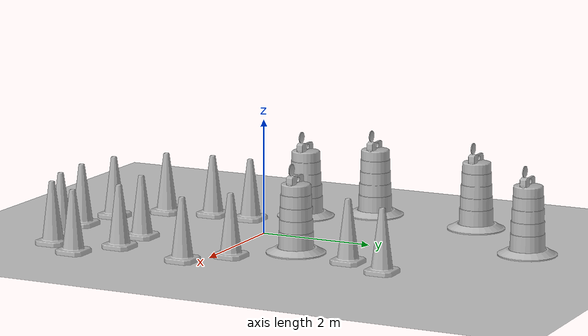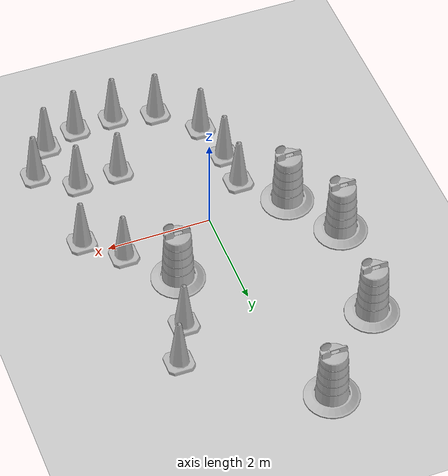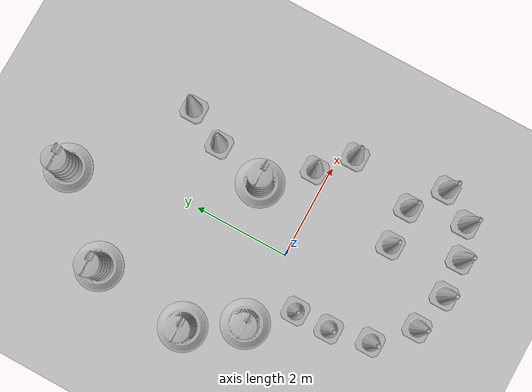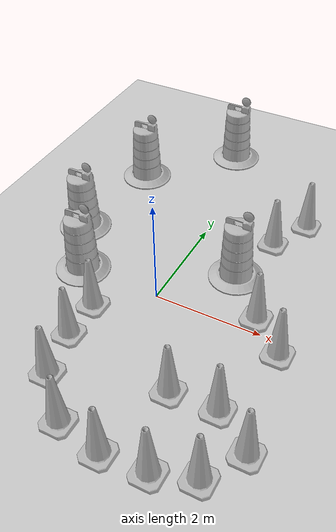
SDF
<sdf version="1.7">
 <world name="default">
  <light name="sun" type="directional">
   <pose>0 0 10 0 -0 0</pose>
   <diffuse>0.8 0.8 0.8 1</diffuse>
   <specular>0.2 0.2 0.2 1</specular>
   <attenuation>
    <range>1000</range>
    <constant>0.9</constant>
    <linear>0.01</linear>
    <quadratic>0.001</quadratic>
   </attenuation>
   <direction>-0.5 0.1 -0.9</direction>
   <spot><inner_angle>0</inner_angle><outer_angle>0</outer_angle><falloff>0</falloff></spot>
  </light>
  <model name="ground_plane">
   <static>1</static>
   <link name="link">
    <collision name="collision">
     <geometry><plane><normal>0 0 1</normal><size>100 100</size></plane></geometry>
     <surface>
      <contact><collide_bitmask>65535</collide_bitmask></contact>
      <friction><ode><mu>100</mu><mu2>50</mu2></ode></friction>
     </surface>
    </collision>
    <visual name="visual">
     <cast_shadows>0</cast_shadows>
     <geometry><plane><normal>0 0 1</normal><size>100 100</size></plane></geometry>
     <material>
      <script><uri>file://media/materials/scripts/gazebo.material</uri><name>Gazebo/Grey</name></script>
     </material>
    </visual>
   </link>
  </model>
  <gravity>0 0 -9.8</gravity>
  <magnetic_field>6e-06 2.3e-05 -4.2e-05</magnetic_field>
  <atmosphere type="adiabatic"/>
  <physics type="ode">
   <max_step_size>0.001</max_step_size>
   <real_time_factor>1</real_time_factor>
   <real_time_update_rate>1000</real_time_update_rate>
  </physics>
  <scene><ambient>0.4 0.4 0.4 1</ambient><background>0.7 0.7 0.7 1</background><shadows>1</shadows></scene>
  <audio><device>default</device></audio>
  <spherical_coordinates>
   <surface_model>EARTH_WGS84</surface_model>
   <latitude_deg>0</latitude_deg>
   <longitude_deg>0</longitude_deg>
   <elevation>0</elevation>
   <heading_deg>0</heading_deg>
  </spherical_coordinates>
  <model name="Construction Barrel">
   <link name="link">
    <inertial>
     <pose>0 0 0.4 0 -0 0</pose>
     <mass>500</mass>
     <inertia><ixx>51.2096</ixx><iyy>51.2096</iyy><izz>25</izz><ixy>0</ixy><ixz>0</ixz><iyz>0</iyz></inertia>
    </inertial>
    <collision name="collision">
     <geometry><mesh><uri>model://construction_barrel/meshes/construction_barrel.dae</uri></mesh></geometry>
    </collision>
    <visual name="visual">
     <geometry><mesh><uri>model://construction_barrel/meshes/construction_barrel.dae</uri></mesh></geometry>
    </visual>
   </link>
   <pose>1.03653 1.13203 0 1e-06 1e-06 -3e-05</pose>
  </model>
  <model name="Construction Cone">
   <link name="link">
    <collision name="collision">
     <geometry>
      <mesh><scale>10 10 10</scale><uri>model://construction_cone/meshes/construction_cone.dae</uri></mesh>
     </geometry>
    </collision>
    <visual name="visual">
     <geometry>
      <mesh><scale>10 10 10</scale><uri>model://construction_cone/meshes/construction_cone.dae</uri></mesh>
     </geometry>
    </visual>
    <inertial>
     <inertia><ixx>1</ixx><ixy>0</ixy><ixz>0</ixz><iyy>1</iyy><iyz>0</iyz><izz>1</izz></inertia>
     <mass>1</mass>
    </inertial>
   </link>
   <pose>-0.862921 -0.71213 -0 0 -1e-06 0</pose>
  </model>
  <model name="Construction Barrel_0">
   <link name="link">
    <inertial>
     <pose>0 0 0.4 0 -0 0</pose>
     <mass>500</mass>
     <inertia><ixx>51.2096</ixx><iyy>51.2096</iyy><izz>25</izz><ixy>0</ixy><ixz>0</ixz><iyz>0</iyz></inertia>
    </inertial>
    <collision name="collision">
     <geometry><mesh><uri>model://construction_barrel/meshes/construction_barrel.dae</uri></mesh></geometry>
    </collision>
    <visual name="visual">
     <geometry><mesh><uri>model://construction_barrel/meshes/construction_barrel.dae</uri></mesh></geometry>
    </visual>
   </link>
   <pose>-1.9745 3.13892 0 1e-06 1e-06 -2.7e-05</pose>
  </model>
  <model name="Construction Cone_0">
   <link name="link">
    <collision name="collision">
     <geometry>
      <mesh><scale>10 10 10</scale><uri>model://construction_cone/meshes/construction_cone.dae</uri></mesh>
     </geometry>
    </collision>
    <visual name="visual">
     <geometry>
      <mesh><scale>10 10 10</scale><uri>model://construction_cone/meshes/construction_cone.dae</uri></mesh>
     </geometry>
    </visual>
    <inertial>
     <inertia><ixx>1</ixx><ixy>0</ixy><ixz>0</ixz><iyy>1</iyy><iyz>0</iyz><izz>1</izz></inertia>
     <mass>1</mass>
    </inertial>
   </link>
   <pose>1.70792 3.02598 -6e-06 -4e-06 0 0</pose>
  </model>
  <model name="Construction Barrel_1">
   <link name="link">
    <inertial>
     <pose>0 0 0.4 0 -0 0</pose>
     <mass>500</mass>
     <inertia><ixx>51.2096</ixx><iyy>51.2096</iyy><izz>25</izz><ixy>0</ixy><ixz>0</ixz><iyz>0</iyz></inertia>
    </inertial>
    <collision name="collision">
     <geometry><mesh><uri>model://construction_barrel/meshes/construction_barrel.dae</uri></mesh></geometry>
    </collision>
    <visual name="visual">
     <geometry><mesh><uri>model://construction_barrel/meshes/construction_barrel.dae</uri></mesh></geometry>
    </visual>
   </link>
   <pose>-0.551889 4.6671 0 1e-06 1e-06 -2.5e-05</pose>
  </model>
  <model name="Construction Cone_1">
   <link name="link">
    <collision name="collision">
     <geometry>
      <mesh><scale>10 10 10</scale><uri>model://construction_cone/meshes/construction_cone.dae</uri></mesh>
     </geometry>
    </collision>
    <visual name="visual">
     <geometry>
      <mesh><scale>10 10 10</scale><uri>model://construction_cone/meshes/construction_cone.dae</uri></mesh>
     </geometry>
    </visual>
    <inertial>
     <inertia><ixx>1</ixx><ixy>0</ixy><ixz>0</ixz><iyy>1</iyy><iyz>0</iyz><izz>1</izz></inertia>
     <mass>1</mass>
    </inertial>
   </link>
   <pose>2.41947 -0.286577 -0 0 -1e-06 0</pose>
  </model>
  <model name="Construction Barrel_2">
   <link name="link">
    <inertial>
     <pose>0 0 0.4 0 -0 0</pose>
     <mass>500</mass>
     <inertia><ixx>51.2096</ixx><iyy>51.2096</iyy><izz>25</izz><ixy>0</ixy><ixz>0</ixz><iyz>0</iyz></inertia>
    </inertial>
    <collision name="collision">
     <geometry><mesh><uri>model://construction_barrel/meshes/construction_barrel.dae</uri></mesh></geometry>
    </collision>
    <visual name="visual">
     <geometry><mesh><uri>model://construction_barrel/meshes/construction_barrel.dae</uri></mesh></geometry>
    </visual>
   </link>
   <pose>-2.21547 1.091 0 1e-06 1e-06 -2.2e-05</pose>
  </model>
  <model name="Construction Cone_2">
   <link name="link">
    <collision name="collision">
     <geometry>
      <mesh><scale>10 10 10</scale><uri>model://construction_cone/meshes/construction_cone.dae</uri></mesh>
     </geometry>
    </collision>
    <visual name="visual">
     <geometry>
      <mesh><scale>10 10 10</scale><uri>model://construction_cone/meshes/construction_cone.dae</uri></mesh>
     </geometry>
    </visual>
    <inertial>
     <inertia><ixx>1</ixx><ixy>0</ixy><ixz>0</ixz><iyy>1</iyy><iyz>0</iyz><izz>1</izz></inertia>
     <mass>1</mass>
    </inertial>
   </link>
   <pose>1.19547 -1.74748 -0 0 -1e-06 0</pose>
  </model>
  <model name="Construction Cone_3">
   <link name="link">
    <collision name="collision">
     <geometry>
      <mesh><scale>10 10 10</scale><uri>model://construction_cone/meshes/construction_cone.dae</uri></mesh>
     </geometry>
    </collision>
    <visual name="visual">
     <geometry>
      <mesh><scale>10 10 10</scale><uri>model://construction_cone/meshes/construction_cone.dae</uri></mesh>
     </geometry>
    </visual>
    <inertial>
     <inertia><ixx>1</ixx><ixy>0</ixy><ixz>0</ixz><iyy>1</iyy><iyz>0</iyz><izz>1</izz></inertia>
     <mass>1</mass>
    </inertial>
   </link>
   <pose>1.79541 0.293853 -0 0 -0 0</pose>
  </model>
  <model name="Construction Cone_4">
   <link name="link">
    <collision name="collision">
     <geometry>
      <mesh><scale>10 10 10</scale><uri>model://construction_cone/meshes/construction_cone.dae</uri></mesh>
     </geometry>
    </collision>
    <visual name="visual">
     <geometry>
      <mesh><scale>10 10 10</scale><uri>model://construction_cone/meshes/construction_cone.dae</uri></mesh>
     </geometry>
    </visual>
    <inertial>
     <inertia><ixx>1</ixx><ixy>0</ixy><ixz>0</ixz><iyy>1</iyy><iyz>0</iyz><izz>1</izz></inertia>
     <mass>1</mass>
    </inertial>
   </link>
   <pose>1.32306 2.23114 -0 0 -0 0</pose>
  </model>
  <model name="Construction Cone_5">
   <link name="link">
    <collision name="collision">
     <geometry>
      <mesh><scale>10 10 10</scale><uri>model://construction_cone/meshes/construction_cone.dae</uri></mesh>
     </geometry>
    </collision>
    <visual name="visual">
     <geometry>
      <mesh><scale>10 10 10</scale><uri>model://construction_cone/meshes/construction_cone.dae</uri></mesh>
     </geometry>
    </visual>
    <inertial>
     <inertia><ixx>1</ixx><ixy>0</ixy><ixz>0</ixz><iyy>1</iyy><iyz>0</iyz><izz>1</izz></inertia>
     <mass>1</mass>
    </inertial>
   </link>
   <pose>-0.855891 -1.45799 -0 0 -1e-06 0</pose>
  </model>
  <model name="Construction Barrel_3">
   <link name="link">
    <inertial>
     <pose>0 0 0.4 0 -0 0</pose>
     <mass>500</mass>
     <inertia><ixx>51.2096</ixx><iyy>51.2096</iyy><izz>25</izz><ixy>0</ixy><ixz>0</ixz><iyz>0</iyz></inertia>
    </inertial>
    <collision name="collision">
     <geometry><mesh><uri>model://construction_barrel/meshes/construction_barrel.dae</uri></mesh></geometry>
    </collision>
    <visual name="visual">
     <geometry><mesh><uri>model://construction_barrel/meshes/construction_barrel.dae</uri></mesh></geometry>
    </visual>
   </link>
   <pose>-1.56432 0.035053 -2e-06 4e-06 7e-06 -1.5e-05</pose>
  </model>
  <model name="Construction Cone_6">
   <link name="link">
    <collision name="collision">
     <geometry>
      <mesh><scale>10 10 10</scale><uri>model://construction_cone/meshes/construction_cone.dae</uri></mesh>
     </geometry>
    </collision>
    <visual name="visual">
     <geometry>
      <mesh><scale>10 10 10</scale><uri>model://construction_cone/meshes/construction_cone.dae</uri></mesh>
     </geometry>
    </visual>
    <inertial>
     <inertia><ixx>1</ixx><ixy>0</ixy><ixz>0</ixz><iyy>1</iyy><iyz>0</iyz><izz>1</izz></inertia>
     <mass>1</mass>
    </inertial>
   </link>
   <pose>-0.687066 -2.30027 -2e-06 4e-06 -1e-06 0</pose>
  </model>
  <model name="Construction Cone_7">
   <link name="link">
    <collision name="collision">
     <geometry>
      <mesh><scale>10 10 10</scale><uri>model://construction_cone/meshes/construction_cone.dae</uri></mesh>
     </geometry>
    </collision>
    <visual name="visual">
     <geometry>
      <mesh><scale>10 10 10</scale><uri>model://construction_cone/meshes/construction_cone.dae</uri></mesh>
     </geometry>
    </visual>
    <inertial>
     <inertia><ixx>1</ixx><ixy>0</ixy><ixz>0</ixz><iyy>1</iyy><iyz>0</iyz><izz>1</izz></inertia>
     <mass>1</mass>
    </inertial>
   </link>
   <pose>0.002582 -2.97776 -0 0 -1e-06 0</pose>
  </model>
  <model name="Construction Cone_8">
   <link name="link">
    <collision name="collision">
     <geometry>
      <mesh><scale>10 10 10</scale><uri>model://construction_cone/meshes/construction_cone.dae</uri></mesh>
     </geometry>
    </collision>
    <visual name="visual">
     <geometry>
      <mesh><scale>10 10 10</scale><uri>model://construction_cone/meshes/construction_cone.dae</uri></mesh>
     </geometry>
    </visual>
    <inertial>
     <inertia><ixx>1</ixx><ixy>0</ixy><ixz>0</ixz><iyy>1</iyy><iyz>0</iyz><izz>1</izz></inertia>
     <mass>1</mass>
    </inertial>
   </link>
   <pose>0.818964 -3.15481 -0 0 -1e-06 0</pose>
  </model>
  <model name="Construction Cone_9">
   <link name="link">
    <collision name="collision">
     <geometry>
      <mesh><scale>10 10 10</scale><uri>model://construction_cone/meshes/construction_cone.dae</uri></mesh>
     </geometry>
    </collision>
    <visual name="visual">
     <geometry>
      <mesh><scale>10 10 10</scale><uri>model://construction_cone/meshes/construction_cone.dae</uri></mesh>
     </geometry>
    </visual>
    <inertial>
     <inertia><ixx>1</ixx><ixy>0</ixy><ixz>0</ixz><iyy>1</iyy><iyz>0</iyz><izz>1</izz></inertia>
     <mass>1</mass>
    </inertial>
   </link>
   <pose>1.61016 -3.10348 -0 0 -0 0</pose>
  </model>
  <model name="Construction Cone_10">
   <link name="link">
    <collision name="collision">
     <geometry>
      <mesh><scale>10 10 10</scale><uri>model://construction_cone/meshes/construction_cone.dae</uri></mesh>
     </geometry>
    </collision>
    <visual name="visual">
     <geometry>
      <mesh><scale>10 10 10</scale><uri>model://construction_cone/meshes/construction_cone.dae</uri></mesh>
     </geometry>
    </visual>
    <inertial>
     <inertia><ixx>1</ixx><ixy>0</ixy><ixz>0</ixz><iyy>1</iyy><iyz>0</iyz><izz>1</izz></inertia>
     <mass>1</mass>
    </inertial>
   </link>
   <pose>2.28662 -2.86919 -0 0 -0 0</pose>
  </model>
  <model name="Construction Cone_11">
   <link name="link">
    <collision name="collision">
     <geometry>
      <mesh><scale>10 10 10</scale><uri>model://construction_cone/meshes/construction_cone.dae</uri></mesh>
     </geometry>
    </collision>
    <visual name="visual">
     <geometry>
      <mesh><scale>10 10 10</scale><uri>model://construction_cone/meshes/construction_cone.dae</uri></mesh>
     </geometry>
    </visual>
    <inertial>
     <inertia><ixx>1</ixx><ixy>0</ixy><ixz>0</ixz><iyy>1</iyy><iyz>0</iyz><izz>1</izz></inertia>
     <mass>1</mass>
    </inertial>
   </link>
   <pose>2.02545 -1.71274 0 -0 -0 -0</pose>
  </model>
  <model name="Construction Cone_12">
   <link name="link">
    <collision name="collision">
     <geometry>
      <mesh><scale>10 10 10</scale><uri>model://construction_cone/meshes/construction_cone.dae</uri></mesh>
     </geometry>
    </collision>
    <visual name="visual">
     <geometry>
      <mesh><scale>10 10 10</scale><uri>model://construction_cone/meshes/construction_cone.dae</uri></mesh>
     </geometry>
    </visual>
    <inertial>
     <inertia><ixx>1</ixx><ixy>0</ixy><ixz>0</ixz><iyy>1</iyy><iyz>0</iyz><izz>1</izz></inertia>
     <mass>1</mass>
    </inertial>
   </link>
   <pose>2.71274 -2.20874 -0 0 -0 0</pose>
  </model>
 </world>
</sdf>
